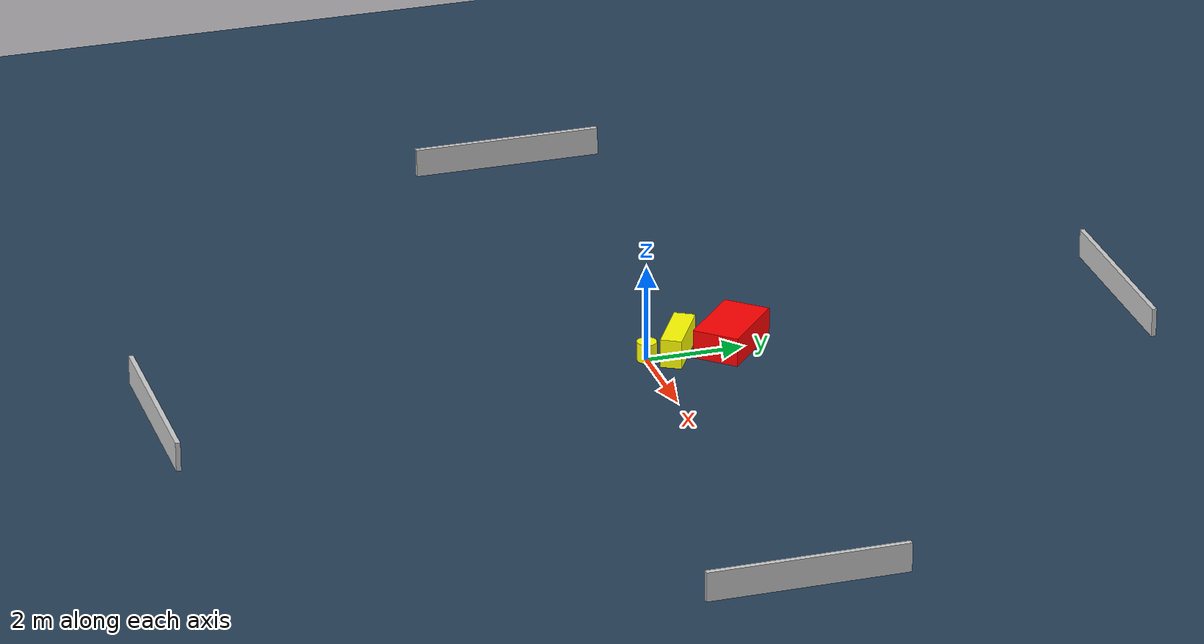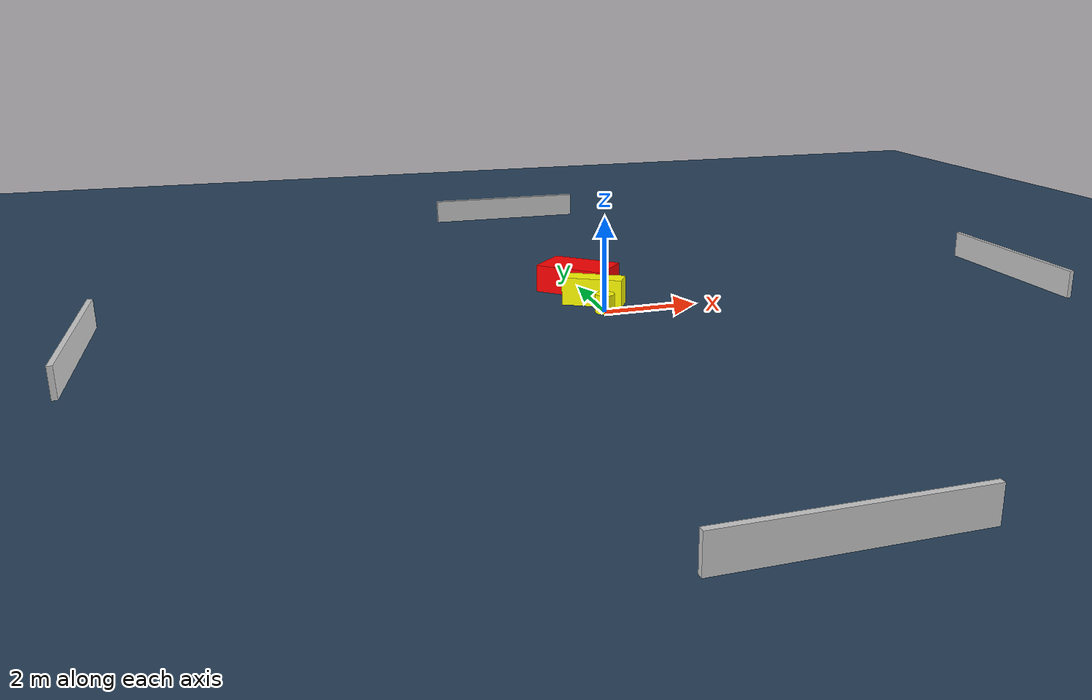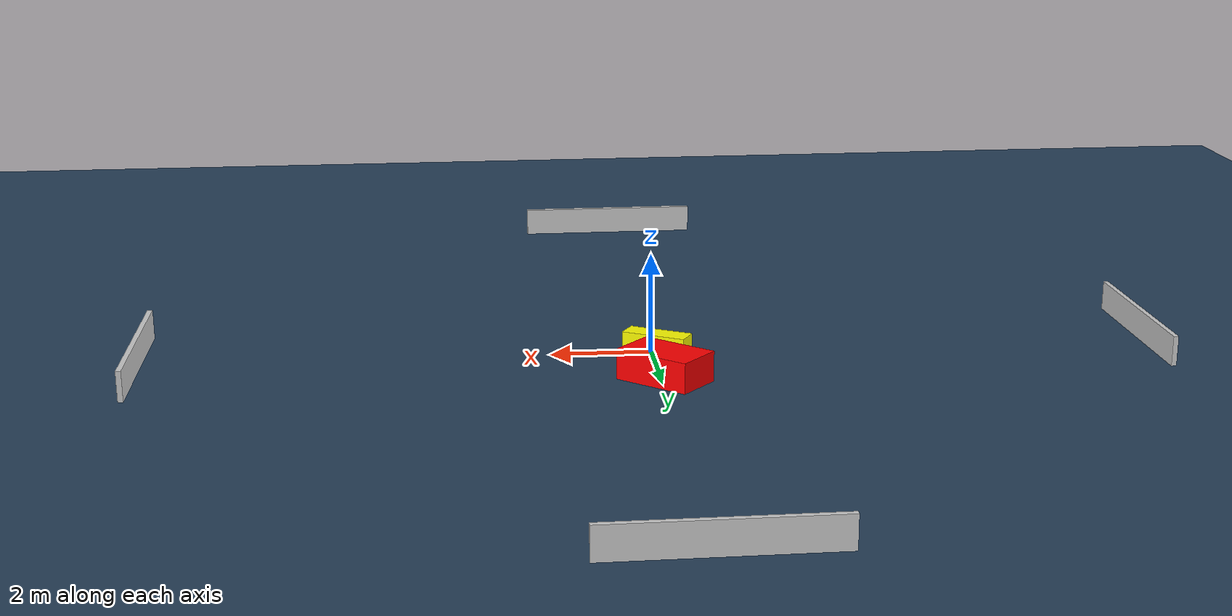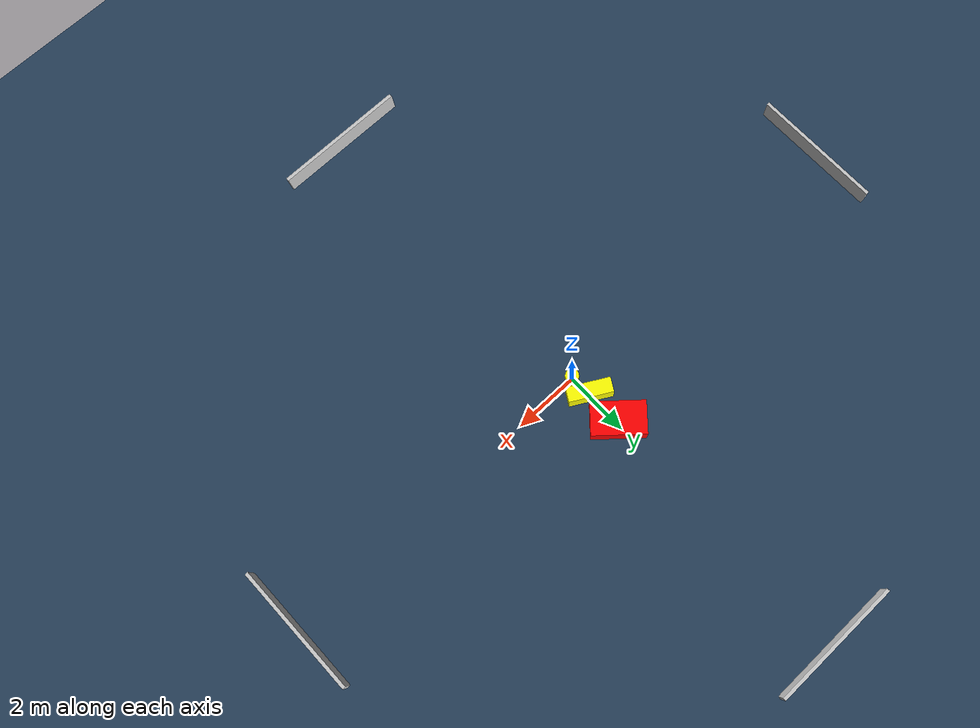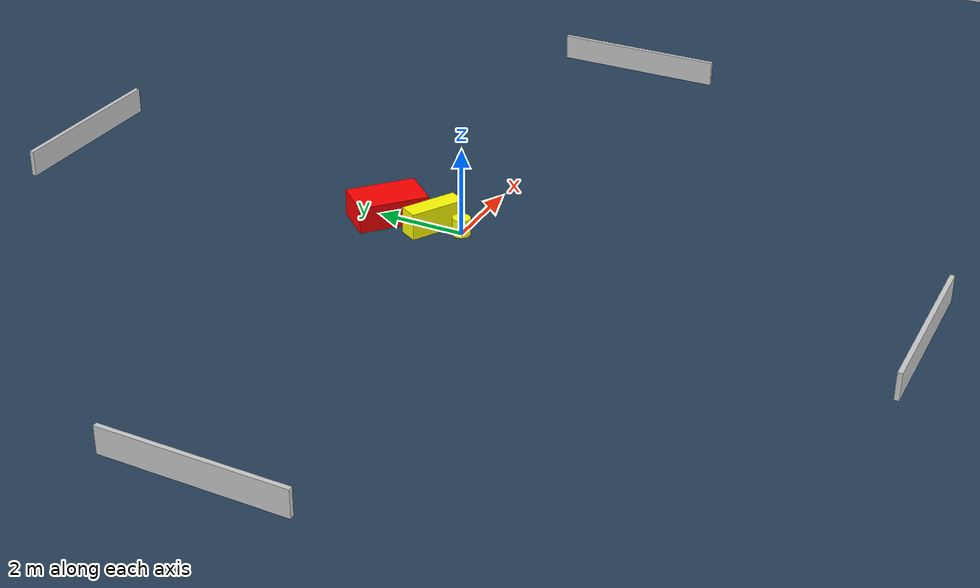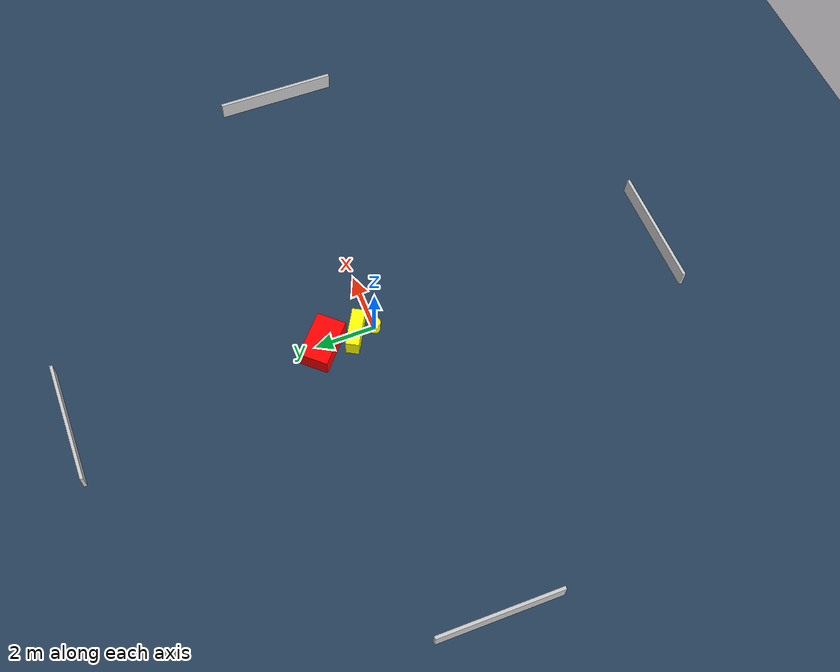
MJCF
<?xml version="1.0" ?>
<mujoco model="generated_environment">
  <option timestep="0.01" integrator="RK4" cone="elliptic"/>
  <default>
    <geom density="1"/>
  </default>
  <asset>
    <texture builtin="gradient" height="3072" name="skybox" rgb1="0.3 0.5 0.7" rgb2="0 0 0" type="skybox" width="512"/>
    <texture builtin="checker" height="300" name="groundplane" rgb1="0.2 0.3 0.4" rgb2="0.1 0.2 0.3" type="2d" width="300"/>
    <material name="groundplane" reflectance="0.2" texrepeat="5 5" texture="groundplane"/>
  </asset>
  <worldbody>
    <light dir="0 0 -1" directional="true" pos="0 0 1.5"/>
    <geom condim="3" friction="0.5 0.005 0.001" material="groundplane" name="floor" pos="0 0 0" size="0 0 0.05" type="plane"/>
    <body name="walls">
      <geom name="wall_1" condim="4" pos="-10.0 0.0 0.3" rgba="0.800000011920929 0.800000011920929 0.800000011920929 1.0" size="0.05 2.0 0.3" type="box"/>
      <geom name="wall_2" condim="4" pos="10.0 0.0 0.3" rgba="0.800000011920929 0.800000011920929 0.800000011920929 1.0" size="0.05 2.0 0.3" type="box"/>
      <geom name="wall_3" condim="4" pos="0.0 -10.0 0.3" rgba="0.800000011920929 0.800000011920929 0.800000011920929 1.0" size="2.0 0.05 0.3" type="box"/>
      <geom name="wall_4" condim="4" pos="0.0 10.0 0.3" rgba="0.800000011920929 0.800000011920929 0.800000011920929 1.0" size="2.0 0.05 0.3" type="box"/>
    </body>
    <body name="robot">
      <joint name="joint_x" type="slide" pos="0 0 0" axis="1 0 0"/>
      <joint name="joint_y" type="slide" pos="0 0 0" axis="0 1 0"/>
      <geom name="robot" type="cylinder" pos="0.0 0.0 0.2" size="0.2 0.2 0.0" mass="5.0" friction="1.0 0.005 0.0001" condim="4" rgba="1.0 1.0 0.0 1.0"/>
    </body>
    <body name="obstacle_1_movable">
      <geom name="obstacle_1_movable" condim="4" pos="-0.04609567145071751 0.6584200427029376 0.3" euler="0 0 330.29837904869567" friction="0.0 0.005 0.001" rgba="1.0 1.0 0.0 1.0" size="0.6464490727366947 0.21652096449167998 0.3" type="box" mass="0.1"/>
      <joint type="free"/>
    </body>
    <body name="obstacle_2_static">
      <geom name="obstacle_2_static" condim="4" pos="-0.07157567068303504 1.783182432114069 0.3" euler="0 0 228.2155267098534" friction="0.0 0.005 0.001" rgba="1.0 0.0 0.0 1.0" size="0.4833648424326234 0.7909737350989505 0.3" type="box"/>
    </body>
  </worldbody>
  <actuator>
    <motor name="actuator_x" joint="joint_x" gear="1" ctrlrange="-1 1"/>
    <motor name="actuator_y" joint="joint_y" gear="1" ctrlrange="-1 1"/>
  </actuator>
</mujoco>
